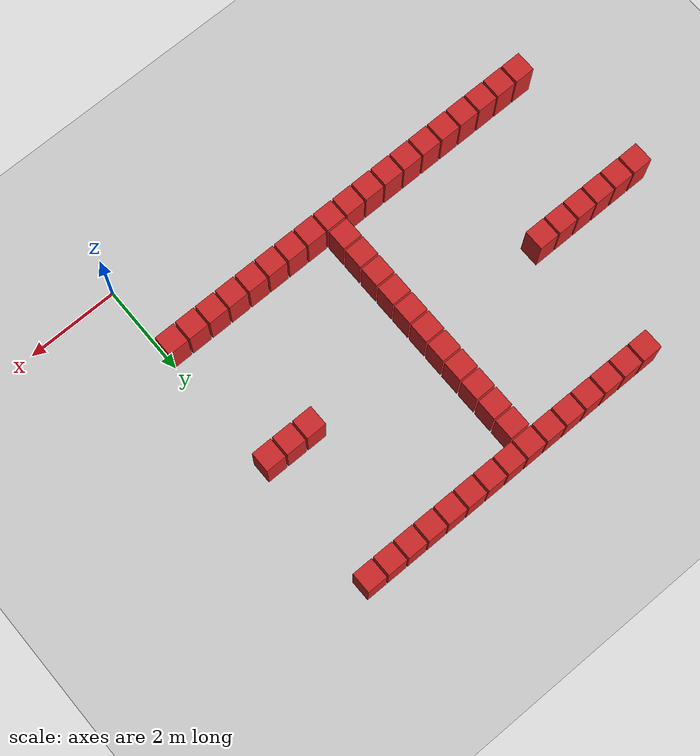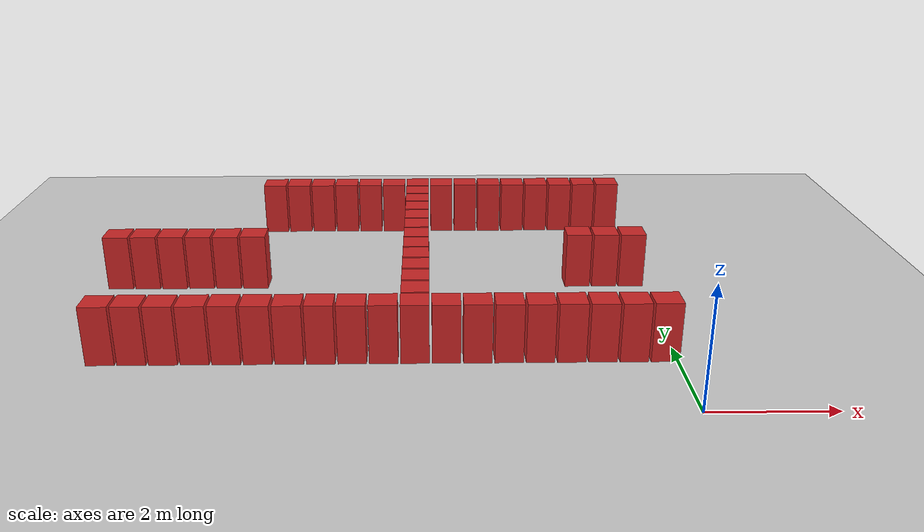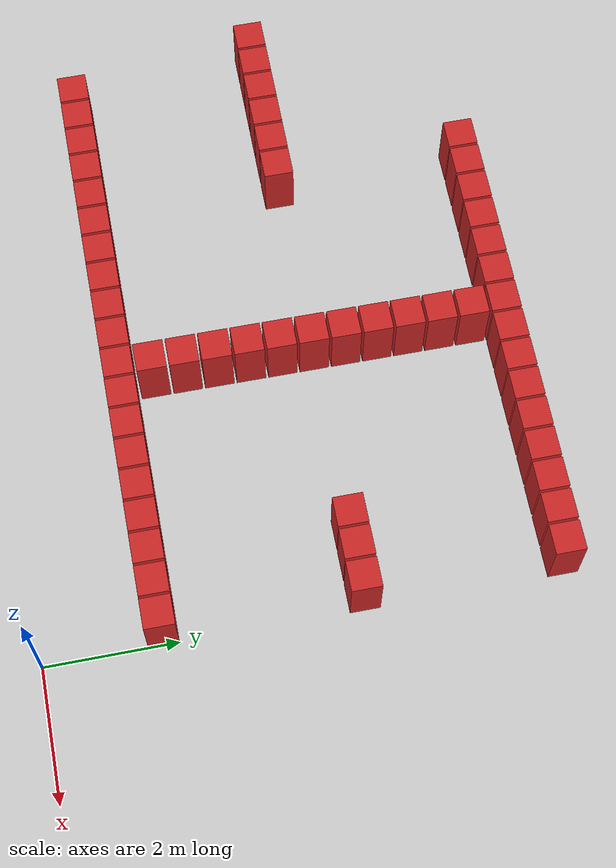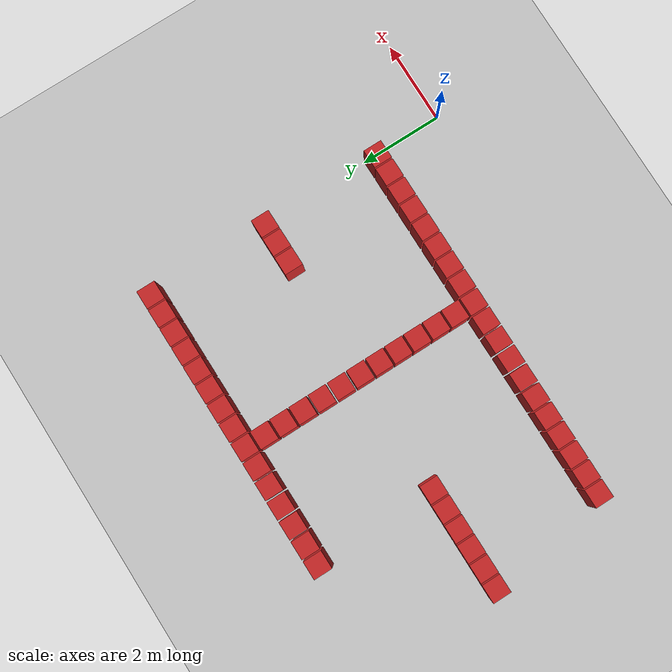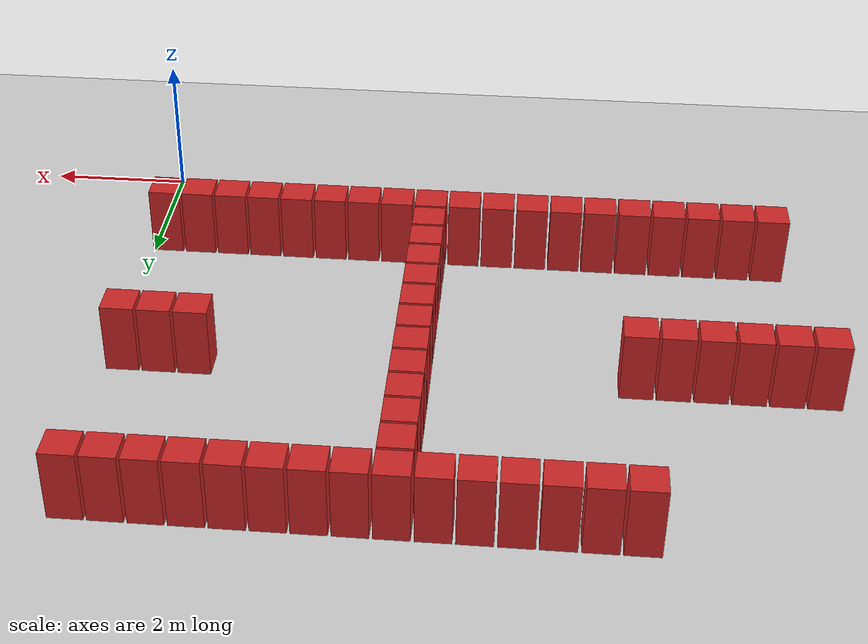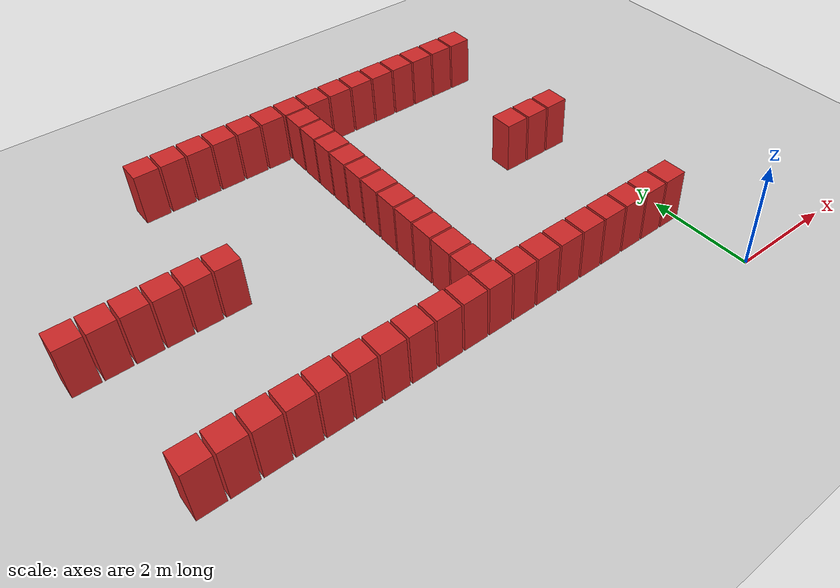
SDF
<sdf version="1.6">
 <world name="default">
  <model name="ground_plane">
   <static>1</static>
   <link name="link">
    <collision name="collision">
     <geometry><plane><normal>0 0 1</normal><size>100 100</size></plane></geometry>
     <surface><friction><ode><mu>100</mu><mu2>50</mu2></ode></friction></surface>
    </collision>
    <visual name="visual">
     <cast_shadows>0</cast_shadows>
     <geometry><plane><normal>0 0 1</normal><size>100 100</size></plane></geometry>
     <material>
      <script><uri>file://media/materials/scripts/gazebo.material</uri><name>Gazebo/Grey</name></script>
     </material>
    </visual>
   </link>
  </model>
  <model name="box_obstacle1">
   <static>0</static>
   <link name="link">
    <pose>0 0 0.1 0 -0 0</pose>
    <inertial>
     <mass>100</mass>
     <inertia>
      <ixx>0.166667</ixx>
      <ixy>0</ixy>
      <ixz>0</ixz>
      <iyy>0.166667</iyy>
      <iyz>0</iyz>
      <izz>0.166667</izz>
     </inertia>
    </inertial>
    <collision name="collision"><geometry><box><size>0.45 0.45 1</size></box></geometry></collision>
    <visual name="visual">
     <geometry><box><size>0.45 0.45 1</size></box></geometry>
     <material>
      <script><name>Gazebo/Red</name><uri>file://media/materials/scripts/gazebo.material</uri></script>
     </material>
    </visual>
   </link>
   <pose>-9.51051 4.69876 0.4 0 5e-06 0.002247</pose>
  </model>
  <model name="box_obstacle2">
   <static>0</static>
   <link name="link">
    <pose>0 0 0.1 0 -0 0</pose>
    <inertial>
     <mass>100</mass>
     <inertia>
      <ixx>0.166667</ixx>
      <ixy>0</ixy>
      <ixz>0</ixz>
      <iyy>0.166667</iyy>
      <iyz>0</iyz>
      <izz>0.166667</izz>
     </inertia>
    </inertial>
    <collision name="collision"><geometry><box><size>0.45 0.45 1</size></box></geometry></collision>
    <visual name="visual">
     <geometry><box><size>0.45 0.45 1</size></box></geometry>
     <material>
      <script><name>Gazebo/Red</name><uri>file://media/materials/scripts/gazebo.material</uri></script>
     </material>
    </visual>
   </link>
   <pose>-9.02051 1.75876 0.4 0 5e-06 0.002247</pose>
  </model>
  <model name="box_obstacle3">
   <static>0</static>
   <link name="link">
    <pose>0 0 0.1 0 -0 0</pose>
    <inertial>
     <mass>100</mass>
     <inertia>
      <ixx>0.166667</ixx>
      <ixy>0</ixy>
      <ixz>0</ixz>
      <iyy>0.166667</iyy>
      <iyz>0</iyz>
      <izz>0.166667</izz>
     </inertia>
    </inertial>
    <collision name="collision"><geometry><box><size>0.45 0.45 1</size></box></geometry></collision>
    <visual name="visual">
     <geometry><box><size>0.45 0.45 1</size></box></geometry>
     <material>
      <script><name>Gazebo/Red</name><uri>file://media/materials/scripts/gazebo.material</uri></script>
     </material>
    </visual>
   </link>
   <pose>-9.02051 4.69876 0.4 0 5e-06 0.002247</pose>
  </model>
  <model name="box_obstacle4">
   <static>0</static>
   <link name="link">
    <pose>0 0 0.1 0 -0 0</pose>
    <inertial>
     <mass>100</mass>
     <inertia>
      <ixx>0.166667</ixx>
      <ixy>0</ixy>
      <ixz>0</ixz>
      <iyy>0.166667</iyy>
      <iyz>0</iyz>
      <izz>0.166667</izz>
     </inertia>
    </inertial>
    <collision name="collision"><geometry><box><size>0.45 0.45 1</size></box></geometry></collision>
    <visual name="visual">
     <geometry><box><size>0.45 0.45 1</size></box></geometry>
     <material>
      <script><name>Gazebo/Red</name><uri>file://media/materials/scripts/gazebo.material</uri></script>
     </material>
    </visual>
   </link>
   <pose>-8.53051 1.75876 0.4 0 5e-06 0.002247</pose>
  </model>
  <model name="box_obstacle5">
   <static>0</static>
   <link name="link">
    <pose>0 0 0.1 0 -0 0</pose>
    <inertial>
     <mass>100</mass>
     <inertia>
      <ixx>0.166667</ixx>
      <ixy>0</ixy>
      <ixz>0</ixz>
      <iyy>0.166667</iyy>
      <iyz>0</iyz>
      <izz>0.166667</izz>
     </inertia>
    </inertial>
    <collision name="collision"><geometry><box><size>0.45 0.45 1</size></box></geometry></collision>
    <visual name="visual">
     <geometry><box><size>0.45 0.45 1</size></box></geometry>
     <material>
      <script><name>Gazebo/Red</name><uri>file://media/materials/scripts/gazebo.material</uri></script>
     </material>
    </visual>
   </link>
   <pose>-8.53051 4.69876 0.4 0 5e-06 0.002247</pose>
  </model>
  <model name="box_obstacle6">
   <static>0</static>
   <link name="link">
    <pose>0 0 0.1 0 -0 0</pose>
    <inertial>
     <mass>100</mass>
     <inertia>
      <ixx>0.166667</ixx>
      <ixy>0</ixy>
      <ixz>0</ixz>
      <iyy>0.166667</iyy>
      <iyz>0</iyz>
      <izz>0.166667</izz>
     </inertia>
    </inertial>
    <collision name="collision"><geometry><box><size>0.45 0.45 1</size></box></geometry></collision>
    <visual name="visual">
     <geometry><box><size>0.45 0.45 1</size></box></geometry>
     <material>
      <script><name>Gazebo/Red</name><uri>file://media/materials/scripts/gazebo.material</uri></script>
     </material>
    </visual>
   </link>
   <pose>-8.04051 1.75876 0.4 0 5e-06 0.002247</pose>
  </model>
  <model name="box_obstacle7">
   <static>0</static>
   <link name="link">
    <pose>0 0 0.1 0 -0 0</pose>
    <inertial>
     <mass>100</mass>
     <inertia>
      <ixx>0.166667</ixx>
      <ixy>0</ixy>
      <ixz>0</ixz>
      <iyy>0.166667</iyy>
      <iyz>0</iyz>
      <izz>0.166667</izz>
     </inertia>
    </inertial>
    <collision name="collision"><geometry><box><size>0.45 0.45 1</size></box></geometry></collision>
    <visual name="visual">
     <geometry><box><size>0.45 0.45 1</size></box></geometry>
     <material>
      <script><name>Gazebo/Red</name><uri>file://media/materials/scripts/gazebo.material</uri></script>
     </material>
    </visual>
   </link>
   <pose>-8.04051 4.69876 0.4 0 5e-06 0.002247</pose>
  </model>
  <model name="box_obstacle8">
   <static>0</static>
   <link name="link">
    <pose>0 0 0.1 0 -0 0</pose>
    <inertial>
     <mass>100</mass>
     <inertia>
      <ixx>0.166667</ixx>
      <ixy>0</ixy>
      <ixz>0</ixz>
      <iyy>0.166667</iyy>
      <iyz>0</iyz>
      <izz>0.166667</izz>
     </inertia>
    </inertial>
    <collision name="collision"><geometry><box><size>0.45 0.45 1</size></box></geometry></collision>
    <visual name="visual">
     <geometry><box><size>0.45 0.45 1</size></box></geometry>
     <material>
      <script><name>Gazebo/Red</name><uri>file://media/materials/scripts/gazebo.material</uri></script>
     </material>
    </visual>
   </link>
   <pose>-7.55051 1.75876 0.4 0 5e-06 0.002247</pose>
  </model>
  <model name="box_obstacle9">
   <static>0</static>
   <link name="link">
    <pose>0 0 0.1 0 -0 0</pose>
    <inertial>
     <mass>100</mass>
     <inertia>
      <ixx>0.166667</ixx>
      <ixy>0</ixy>
      <ixz>0</ixz>
      <iyy>0.166667</iyy>
      <iyz>0</iyz>
      <izz>0.166667</izz>
     </inertia>
    </inertial>
    <collision name="collision"><geometry><box><size>0.45 0.45 1</size></box></geometry></collision>
    <visual name="visual">
     <geometry><box><size>0.45 0.45 1</size></box></geometry>
     <material>
      <script><name>Gazebo/Red</name><uri>file://media/materials/scripts/gazebo.material</uri></script>
     </material>
    </visual>
   </link>
   <pose>-7.55051 4.69876 0.4 0 5e-06 0.002247</pose>
  </model>
  <model name="box_obstacle18">
   <static>0</static>
   <link name="link">
    <pose>0 0 0.1 0 -0 0</pose>
    <inertial>
     <mass>100</mass>
     <inertia>
      <ixx>0.166667</ixx>
      <ixy>0</ixy>
      <ixz>0</ixz>
      <iyy>0.166667</iyy>
      <iyz>0</iyz>
      <izz>0.166667</izz>
     </inertia>
    </inertial>
    <collision name="collision"><geometry><box><size>0.45 0.45 1</size></box></geometry></collision>
    <visual name="visual">
     <geometry><box><size>0.45 0.45 1</size></box></geometry>
     <material>
      <script><name>Gazebo/Red</name><uri>file://media/materials/scripts/gazebo.material</uri></script>
     </material>
    </visual>
   </link>
   <pose>-7.06051 1.75876 0.4 0 5e-06 0.002247</pose>
  </model>
  <model name="box_obstacle19">
   <static>0</static>
   <link name="link">
    <pose>0 0 0.1 0 -0 0</pose>
    <inertial>
     <mass>100</mass>
     <inertia>
      <ixx>0.166667</ixx>
      <ixy>0</ixy>
      <ixz>0</ixz>
      <iyy>0.166667</iyy>
      <iyz>0</iyz>
      <izz>0.166667</izz>
     </inertia>
    </inertial>
    <collision name="collision"><geometry><box><size>0.45 0.45 1</size></box></geometry></collision>
    <visual name="visual">
     <geometry><box><size>0.45 0.45 1</size></box></geometry>
     <material>
      <script><name>Gazebo/Red</name><uri>file://media/materials/scripts/gazebo.material</uri></script>
     </material>
    </visual>
   </link>
   <pose>-7.06051 4.69876 0.4 0 5e-06 0.002247</pose>
  </model>
  <model name="box_obstacle20">
   <static>0</static>
   <link name="link">
    <pose>0 0 0.1 0 -0 0</pose>
    <inertial>
     <mass>100</mass>
     <inertia>
      <ixx>0.166667</ixx>
      <ixy>0</ixy>
      <ixz>0</ixz>
      <iyy>0.166667</iyy>
      <iyz>0</iyz>
      <izz>0.166667</izz>
     </inertia>
    </inertial>
    <collision name="collision"><geometry><box><size>0.45 0.45 1</size></box></geometry></collision>
    <visual name="visual">
     <geometry><box><size>0.45 0.45 1</size></box></geometry>
     <material>
      <script><name>Gazebo/Red</name><uri>file://media/materials/scripts/gazebo.material</uri></script>
     </material>
    </visual>
   </link>
   <pose>-7.06051 7.63876 0.4 0 5e-06 0.002247</pose>
  </model>
  <model name="box_obstacle23">
   <static>0</static>
   <link name="link">
    <pose>0 0 0.1 0 -0 0</pose>
    <inertial>
     <mass>100</mass>
     <inertia>
      <ixx>0.166667</ixx>
      <ixy>0</ixy>
      <ixz>0</ixz>
      <iyy>0.166667</iyy>
      <iyz>0</iyz>
      <izz>0.166667</izz>
     </inertia>
    </inertial>
    <collision name="collision"><geometry><box><size>0.45 0.45 1</size></box></geometry></collision>
    <visual name="visual">
     <geometry><box><size>0.45 0.45 1</size></box></geometry>
     <material>
      <script><name>Gazebo/Red</name><uri>file://media/materials/scripts/gazebo.material</uri></script>
     </material>
    </visual>
   </link>
   <pose>-6.57051 1.75876 0.4 0 5e-06 0.002247</pose>
  </model>
  <model name="box_obstacle24">
   <static>0</static>
   <link name="link">
    <pose>0 0 0.1 0 -0 0</pose>
    <inertial>
     <mass>100</mass>
     <inertia>
      <ixx>0.166667</ixx>
      <ixy>0</ixy>
      <ixz>0</ixz>
      <iyy>0.166667</iyy>
      <iyz>0</iyz>
      <izz>0.166667</izz>
     </inertia>
    </inertial>
    <collision name="collision"><geometry><box><size>0.45 0.45 1</size></box></geometry></collision>
    <visual name="visual">
     <geometry><box><size>0.45 0.45 1</size></box></geometry>
     <material>
      <script><name>Gazebo/Red</name><uri>file://media/materials/scripts/gazebo.material</uri></script>
     </material>
    </visual>
   </link>
   <pose>-6.57051 7.63876 0.4 0 5e-06 0.002247</pose>
  </model>
  <model name="box_obstacle27">
   <static>0</static>
   <link name="link">
    <pose>0 0 0.1 0 -0 0</pose>
    <inertial>
     <mass>100</mass>
     <inertia>
      <ixx>0.166667</ixx>
      <ixy>0</ixy>
      <ixz>0</ixz>
      <iyy>0.166667</iyy>
      <iyz>0</iyz>
      <izz>0.166667</izz>
     </inertia>
    </inertial>
    <collision name="collision"><geometry><box><size>0.45 0.45 1</size></box></geometry></collision>
    <visual name="visual">
     <geometry><box><size>0.45 0.45 1</size></box></geometry>
     <material>
      <script><name>Gazebo/Red</name><uri>file://media/materials/scripts/gazebo.material</uri></script>
     </material>
    </visual>
   </link>
   <pose>-6.08051 1.75876 0.4 0 5e-06 0.002247</pose>
  </model>
  <model name="box_obstacle28">
   <static>0</static>
   <link name="link">
    <pose>0 0 0.1 0 -0 0</pose>
    <inertial>
     <mass>100</mass>
     <inertia>
      <ixx>0.166667</ixx>
      <ixy>0</ixy>
      <ixz>0</ixz>
      <iyy>0.166667</iyy>
      <iyz>0</iyz>
      <izz>0.166667</izz>
     </inertia>
    </inertial>
    <collision name="collision"><geometry><box><size>0.45 0.45 1</size></box></geometry></collision>
    <visual name="visual">
     <geometry><box><size>0.45 0.45 1</size></box></geometry>
     <material>
      <script><name>Gazebo/Red</name><uri>file://media/materials/scripts/gazebo.material</uri></script>
     </material>
    </visual>
   </link>
   <pose>-6.08051 7.63876 0.4 0 5e-06 0.002247</pose>
  </model>
  <model name="box_obstacle31">
   <static>0</static>
   <link name="link">
    <pose>0 0 0.1 0 -0 0</pose>
    <inertial>
     <mass>100</mass>
     <inertia>
      <ixx>0.166667</ixx>
      <ixy>0</ixy>
      <ixz>0</ixz>
      <iyy>0.166667</iyy>
      <iyz>0</iyz>
      <izz>0.166667</izz>
     </inertia>
    </inertial>
    <collision name="collision"><geometry><box><size>0.45 0.45 1</size></box></geometry></collision>
    <visual name="visual">
     <geometry><box><size>0.45 0.45 1</size></box></geometry>
     <material>
      <script><name>Gazebo/Red</name><uri>file://media/materials/scripts/gazebo.material</uri></script>
     </material>
    </visual>
   </link>
   <pose>-5.59051 1.75876 0.4 0 5e-06 0.002247</pose>
  </model>
  <model name="box_obstacle32">
   <static>0</static>
   <link name="link">
    <pose>0 0 0.1 0 -0 0</pose>
    <inertial>
     <mass>100</mass>
     <inertia>
      <ixx>0.166667</ixx>
      <ixy>0</ixy>
      <ixz>0</ixz>
      <iyy>0.166667</iyy>
      <iyz>0</iyz>
      <izz>0.166667</izz>
     </inertia>
    </inertial>
    <collision name="collision"><geometry><box><size>0.45 0.45 1</size></box></geometry></collision>
    <visual name="visual">
     <geometry><box><size>0.45 0.45 1</size></box></geometry>
     <material>
      <script><name>Gazebo/Red</name><uri>file://media/materials/scripts/gazebo.material</uri></script>
     </material>
    </visual>
   </link>
   <pose>-5.59051 7.63876 0.4 0 5e-06 0.002247</pose>
  </model>
  <model name="box_obstacle35">
   <static>0</static>
   <link name="link">
    <pose>0 0 0.1 0 -0 0</pose>
    <inertial>
     <mass>100</mass>
     <inertia>
      <ixx>0.166667</ixx>
      <ixy>0</ixy>
      <ixz>0</ixz>
      <iyy>0.166667</iyy>
      <iyz>0</iyz>
      <izz>0.166667</izz>
     </inertia>
    </inertial>
    <collision name="collision"><geometry><box><size>0.45 0.45 1</size></box></geometry></collision>
    <visual name="visual">
     <geometry><box><size>0.45 0.45 1</size></box></geometry>
     <material>
      <script><name>Gazebo/Red</name><uri>file://media/materials/scripts/gazebo.material</uri></script>
     </material>
    </visual>
   </link>
   <pose>-5.10051 1.75876 0.4 0 5e-06 0.002247</pose>
  </model>
  <model name="box_obstacle36">
   <static>0</static>
   <link name="link">
    <pose>0 0 0.1 0 -0 0</pose>
    <inertial>
     <mass>100</mass>
     <inertia>
      <ixx>0.166667</ixx>
      <ixy>0</ixy>
      <ixz>0</ixz>
      <iyy>0.166667</iyy>
      <iyz>0</iyz>
      <izz>0.166667</izz>
     </inertia>
    </inertial>
    <collision name="collision"><geometry><box><size>0.45 0.45 1</size></box></geometry></collision>
    <visual name="visual">
     <geometry><box><size>0.45 0.45 1</size></box></geometry>
     <material>
      <script><name>Gazebo/Red</name><uri>file://media/materials/scripts/gazebo.material</uri></script>
     </material>
    </visual>
   </link>
   <pose>-5.10051 7.63876 0.4 0 5e-06 0.002247</pose>
  </model>
  <model name="box_obstacle39">
   <static>0</static>
   <link name="link">
    <pose>0 0 0.1 0 -0 0</pose>
    <inertial>
     <mass>100</mass>
     <inertia>
      <ixx>0.166667</ixx>
      <ixy>0</ixy>
      <ixz>0</ixz>
      <iyy>0.166667</iyy>
      <iyz>0</iyz>
      <izz>0.166667</izz>
     </inertia>
    </inertial>
    <collision name="collision"><geometry><box><size>0.45 0.45 1</size></box></geometry></collision>
    <visual name="visual">
     <geometry><box><size>0.45 0.45 1</size></box></geometry>
     <material>
      <script><name>Gazebo/Red</name><uri>file://media/materials/scripts/gazebo.material</uri></script>
     </material>
    </visual>
   </link>
   <pose>-4.61051 1.75876 0.4 0 5e-06 0.002247</pose>
  </model>
  <model name="box_obstacle40">
   <static>0</static>
   <link name="link">
    <pose>0 0 0.1 0 -0 0</pose>
    <inertial>
     <mass>100</mass>
     <inertia>
      <ixx>0.166667</ixx>
      <ixy>0</ixy>
      <ixz>0</ixz>
      <iyy>0.166667</iyy>
      <iyz>0</iyz>
      <izz>0.166667</izz>
     </inertia>
    </inertial>
    <collision name="collision"><geometry><box><size>0.45 0.45 1</size></box></geometry></collision>
    <visual name="visual">
     <geometry><box><size>0.45 0.45 1</size></box></geometry>
     <material>
      <script><name>Gazebo/Red</name><uri>file://media/materials/scripts/gazebo.material</uri></script>
     </material>
    </visual>
   </link>
   <pose>-4.61051 7.63876 0.4 0 5e-06 0.002247</pose>
  </model>
  <model name="box_obstacle49">
   <static>0</static>
   <link name="link">
    <pose>0 0 0.1 0 -0 0</pose>
    <inertial>
     <mass>100</mass>
     <inertia>
      <ixx>0.166667</ixx>
      <ixy>0</ixy>
      <ixz>0</ixz>
      <iyy>0.166667</iyy>
      <iyz>0</iyz>
      <izz>0.166667</izz>
     </inertia>
    </inertial>
    <collision name="collision"><geometry><box><size>0.45 0.45 1</size></box></geometry></collision>
    <visual name="visual">
     <geometry><box><size>0.45 0.45 1</size></box></geometry>
     <material>
      <script><name>Gazebo/Red</name><uri>file://media/materials/scripts/gazebo.material</uri></script>
     </material>
    </visual>
   </link>
   <pose>-4.12051 1.75876 0.4 0 5e-06 0.002247</pose>
  </model>
  <model name="box_obstacle50">
   <static>0</static>
   <link name="link">
    <pose>0 0 0.1 0 -0 0</pose>
    <inertial>
     <mass>100</mass>
     <inertia>
      <ixx>0.166667</ixx>
      <ixy>0</ixy>
      <ixz>0</ixz>
      <iyy>0.166667</iyy>
      <iyz>0</iyz>
      <izz>0.166667</izz>
     </inertia>
    </inertial>
    <collision name="collision"><geometry><box><size>0.45 0.45 1</size></box></geometry></collision>
    <visual name="visual">
     <geometry><box><size>0.45 0.45 1</size></box></geometry>
     <material>
      <script><name>Gazebo/Red</name><uri>file://media/materials/scripts/gazebo.material</uri></script>
     </material>
    </visual>
   </link>
   <pose>-4.12051 2.24876 0.4 0 5e-06 0.002247</pose>
  </model>
  <model name="box_obstacle51">
   <static>0</static>
   <link name="link">
    <pose>0 0 0.1 0 -0 0</pose>
    <inertial>
     <mass>100</mass>
     <inertia>
      <ixx>0.166667</ixx>
      <ixy>0</ixy>
      <ixz>0</ixz>
      <iyy>0.166667</iyy>
      <iyz>0</iyz>
      <izz>0.166667</izz>
     </inertia>
    </inertial>
    <collision name="collision"><geometry><box><size>0.45 0.45 1</size></box></geometry></collision>
    <visual name="visual">
     <geometry><box><size>0.45 0.45 1</size></box></geometry>
     <material>
      <script><name>Gazebo/Red</name><uri>file://media/materials/scripts/gazebo.material</uri></script>
     </material>
    </visual>
   </link>
   <pose>-4.12051 2.73876 0.4 0 5e-06 0.002247</pose>
  </model>
  <model name="box_obstacle52">
   <static>0</static>
   <link name="link">
    <pose>0 0 0.1 0 -0 0</pose>
    <inertial>
     <mass>100</mass>
     <inertia>
      <ixx>0.166667</ixx>
      <ixy>0</ixy>
      <ixz>0</ixz>
      <iyy>0.166667</iyy>
      <iyz>0</iyz>
      <izz>0.166667</izz>
     </inertia>
    </inertial>
    <collision name="collision"><geometry><box><size>0.45 0.45 1</size></box></geometry></collision>
    <visual name="visual">
     <geometry><box><size>0.45 0.45 1</size></box></geometry>
     <material>
      <script><name>Gazebo/Red</name><uri>file://media/materials/scripts/gazebo.material</uri></script>
     </material>
    </visual>
   </link>
   <pose>-4.12051 3.22876 0.4 0 5e-06 0.002247</pose>
  </model>
  <model name="box_obstacle53">
   <static>0</static>
   <link name="link">
    <pose>0 0 0.1 0 -0 0</pose>
    <inertial>
     <mass>100</mass>
     <inertia>
      <ixx>0.166667</ixx>
      <ixy>0</ixy>
      <ixz>0</ixz>
      <iyy>0.166667</iyy>
      <iyz>0</iyz>
      <izz>0.166667</izz>
     </inertia>
    </inertial>
    <collision name="collision"><geometry><box><size>0.45 0.45 1</size></box></geometry></collision>
    <visual name="visual">
     <geometry><box><size>0.45 0.45 1</size></box></geometry>
     <material>
      <script><name>Gazebo/Red</name><uri>file://media/materials/scripts/gazebo.material</uri></script>
     </material>
    </visual>
   </link>
   <pose>-4.12051 3.71876 0.4 0 5e-06 0.002247</pose>
  </model>
  <model name="box_obstacle54">
   <static>0</static>
   <link name="link">
    <pose>0 0 0.1 0 -0 0</pose>
    <inertial>
     <mass>100</mass>
     <inertia>
      <ixx>0.166667</ixx>
      <ixy>0</ixy>
      <ixz>0</ixz>
      <iyy>0.166667</iyy>
      <iyz>0</iyz>
      <izz>0.166667</izz>
     </inertia>
    </inertial>
    <collision name="collision"><geometry><box><size>0.45 0.45 1</size></box></geometry></collision>
    <visual name="visual">
     <geometry><box><size>0.45 0.45 1</size></box></geometry>
     <material>
      <script><name>Gazebo/Red</name><uri>file://media/materials/scripts/gazebo.material</uri></script>
     </material>
    </visual>
   </link>
   <pose>-4.12051 4.20876 0.4 0 5e-06 0.002247</pose>
  </model>
  <model name="box_obstacle55">
   <static>0</static>
   <link name="link">
    <pose>0 0 0.1 0 -0 0</pose>
    <inertial>
     <mass>100</mass>
     <inertia>
      <ixx>0.166667</ixx>
      <ixy>0</ixy>
      <ixz>0</ixz>
      <iyy>0.166667</iyy>
      <iyz>0</iyz>
      <izz>0.166667</izz>
     </inertia>
    </inertial>
    <collision name="collision"><geometry><box><size>0.45 0.45 1</size></box></geometry></collision>
    <visual name="visual">
     <geometry><box><size>0.45 0.45 1</size></box></geometry>
     <material>
      <script><name>Gazebo/Red</name><uri>file://media/materials/scripts/gazebo.material</uri></script>
     </material>
    </visual>
   </link>
   <pose>-4.12051 4.69876 0.4 0 5e-06 0.002247</pose>
  </model>
  <model name="box_obstacle56">
   <static>0</static>
   <link name="link">
    <pose>0 0 0.1 0 -0 0</pose>
    <inertial>
     <mass>100</mass>
     <inertia>
      <ixx>0.166667</ixx>
      <ixy>0</ixy>
      <ixz>0</ixz>
      <iyy>0.166667</iyy>
      <iyz>0</iyz>
      <izz>0.166667</izz>
     </inertia>
    </inertial>
    <collision name="collision"><geometry><box><size>0.45 0.45 1</size></box></geometry></collision>
    <visual name="visual">
     <geometry><box><size>0.45 0.45 1</size></box></geometry>
     <material>
      <script><name>Gazebo/Red</name><uri>file://media/materials/scripts/gazebo.material</uri></script>
     </material>
    </visual>
   </link>
   <pose>-4.12051 5.18876 0.4 0 5e-06 0.002247</pose>
  </model>
  <model name="box_obstacle57">
   <static>0</static>
   <link name="link">
    <pose>0 0 0.1 0 -0 0</pose>
    <inertial>
     <mass>100</mass>
     <inertia>
      <ixx>0.166667</ixx>
      <ixy>0</ixy>
      <ixz>0</ixz>
      <iyy>0.166667</iyy>
      <iyz>0</iyz>
      <izz>0.166667</izz>
     </inertia>
    </inertial>
    <collision name="collision"><geometry><box><size>0.45 0.45 1</size></box></geometry></collision>
    <visual name="visual">
     <geometry><box><size>0.45 0.45 1</size></box></geometry>
     <material>
      <script><name>Gazebo/Red</name><uri>file://media/materials/scripts/gazebo.material</uri></script>
     </material>
    </visual>
   </link>
   <pose>-4.12051 5.67876 0.4 0 5e-06 0.002247</pose>
  </model>
  <model name="box_obstacle58">
   <static>0</static>
   <link name="link">
    <pose>0 0 0.1 0 -0 0</pose>
    <inertial>
     <mass>100</mass>
     <inertia>
      <ixx>0.166667</ixx>
      <ixy>0</ixy>
      <ixz>0</ixz>
      <iyy>0.166667</iyy>
      <iyz>0</iyz>
      <izz>0.166667</izz>
     </inertia>
    </inertial>
    <collision name="collision"><geometry><box><size>0.45 0.45 1</size></box></geometry></collision>
    <visual name="visual">
     <geometry><box><size>0.45 0.45 1</size></box></geometry>
     <material>
      <script><name>Gazebo/Red</name><uri>file://media/materials/scripts/gazebo.material</uri></script>
     </material>
    </visual>
   </link>
   <pose>-4.12051 6.16876 0.4 0 5e-06 0.002247</pose>
  </model>
  <model name="box_obstacle59">
   <static>0</static>
   <link name="link">
    <pose>0 0 0.1 0 -0 0</pose>
    <inertial>
     <mass>100</mass>
     <inertia>
      <ixx>0.166667</ixx>
      <ixy>0</ixy>
      <ixz>0</ixz>
      <iyy>0.166667</iyy>
      <iyz>0</iyz>
      <izz>0.166667</izz>
     </inertia>
    </inertial>
    <collision name="collision"><geometry><box><size>0.45 0.45 1</size></box></geometry></collision>
    <visual name="visual">
     <geometry><box><size>0.45 0.45 1</size></box></geometry>
     <material>
      <script><name>Gazebo/Red</name><uri>file://media/materials/scripts/gazebo.material</uri></script>
     </material>
    </visual>
   </link>
   <pose>-4.12051 6.65876 0.4 0 5e-06 0.002247</pose>
  </model>
  <model name="box_obstacle60">
   <static>0</static>
   <link name="link">
    <pose>0 0 0.1 0 -0 0</pose>
    <inertial>
     <mass>100</mass>
     <inertia>
      <ixx>0.166667</ixx>
      <ixy>0</ixy>
      <ixz>0</ixz>
      <iyy>0.166667</iyy>
      <iyz>0</iyz>
      <izz>0.166667</izz>
     </inertia>
    </inertial>
    <collision name="collision"><geometry><box><size>0.45 0.45 1</size></box></geometry></collision>
    <visual name="visual">
     <geometry><box><size>0.45 0.45 1</size></box></geometry>
     <material>
      <script><name>Gazebo/Red</name><uri>file://media/materials/scripts/gazebo.material</uri></script>
     </material>
    </visual>
   </link>
   <pose>-4.12051 7.14876 0.4 0 5e-06 0.002247</pose>
  </model>
  <model name="box_obstacle61">
   <static>0</static>
   <link name="link">
    <pose>0 0 0.1 0 -0 0</pose>
    <inertial>
     <mass>100</mass>
     <inertia>
      <ixx>0.166667</ixx>
      <ixy>0</ixy>
      <ixz>0</ixz>
      <iyy>0.166667</iyy>
      <iyz>0</iyz>
      <izz>0.166667</izz>
     </inertia>
    </inertial>
    <collision name="collision"><geometry><box><size>0.45 0.45 1</size></box></geometry></collision>
    <visual name="visual">
     <geometry><box><size>0.45 0.45 1</size></box></geometry>
     <material>
      <script><name>Gazebo/Red</name><uri>file://media/materials/scripts/gazebo.material</uri></script>
     </material>
    </visual>
   </link>
   <pose>-4.12051 7.63876 0.4 0 5e-06 0.002247</pose>
  </model>
  <model name="box_obstacle64">
   <static>0</static>
   <link name="link">
    <pose>0 0 0.1 0 -0 0</pose>
    <inertial>
     <mass>100</mass>
     <inertia>
      <ixx>0.166667</ixx>
      <ixy>0</ixy>
      <ixz>0</ixz>
      <iyy>0.166667</iyy>
      <iyz>0</iyz>
      <izz>0.166667</izz>
     </inertia>
    </inertial>
    <collision name="collision"><geometry><box><size>0.45 0.45 1</size></box></geometry></collision>
    <visual name="visual">
     <geometry><box><size>0.45 0.45 1</size></box></geometry>
     <material>
      <script><name>Gazebo/Red</name><uri>file://media/materials/scripts/gazebo.material</uri></script>
     </material>
    </visual>
   </link>
   <pose>-3.63051 1.75876 0.4 0 5e-06 0.002247</pose>
  </model>
  <model name="box_obstacle65">
   <static>0</static>
   <link name="link">
    <pose>0 0 0.1 0 -0 0</pose>
    <inertial>
     <mass>100</mass>
     <inertia>
      <ixx>0.166667</ixx>
      <ixy>0</ixy>
      <ixz>0</ixz>
      <iyy>0.166667</iyy>
      <iyz>0</iyz>
      <izz>0.166667</izz>
     </inertia>
    </inertial>
    <collision name="collision"><geometry><box><size>0.45 0.45 1</size></box></geometry></collision>
    <visual name="visual">
     <geometry><box><size>0.45 0.45 1</size></box></geometry>
     <material>
      <script><name>Gazebo/Red</name><uri>file://media/materials/scripts/gazebo.material</uri></script>
     </material>
    </visual>
   </link>
   <pose>-3.63051 7.63876 0.4 0 5e-06 0.002247</pose>
  </model>
  <model name="box_obstacle68">
   <static>0</static>
   <link name="link">
    <pose>0 0 0.1 0 -0 0</pose>
    <inertial>
     <mass>100</mass>
     <inertia>
      <ixx>0.166667</ixx>
      <ixy>0</ixy>
      <ixz>0</ixz>
      <iyy>0.166667</iyy>
      <iyz>0</iyz>
      <izz>0.166667</izz>
     </inertia>
    </inertial>
    <collision name="collision"><geometry><box><size>0.45 0.45 1</size></box></geometry></collision>
    <visual name="visual">
     <geometry><box><size>0.45 0.45 1</size></box></geometry>
     <material>
      <script><name>Gazebo/Red</name><uri>file://media/materials/scripts/gazebo.material</uri></script>
     </material>
    </visual>
   </link>
   <pose>-3.14051 1.75876 0.4 0 5e-06 0.002247</pose>
  </model>
  <model name="box_obstacle69">
   <static>0</static>
   <link name="link">
    <pose>0 0 0.1 0 -0 0</pose>
    <inertial>
     <mass>100</mass>
     <inertia>
      <ixx>0.166667</ixx>
      <ixy>0</ixy>
      <ixz>0</ixz>
      <iyy>0.166667</iyy>
      <iyz>0</iyz>
      <izz>0.166667</izz>
     </inertia>
    </inertial>
    <collision name="collision"><geometry><box><size>0.45 0.45 1</size></box></geometry></collision>
    <visual name="visual">
     <geometry><box><size>0.45 0.45 1</size></box></geometry>
     <material>
      <script><name>Gazebo/Red</name><uri>file://media/materials/scripts/gazebo.material</uri></script>
     </material>
    </visual>
   </link>
   <pose>-3.14051 7.63876 0.4 0 5e-06 0.002247</pose>
  </model>
  <model name="box_obstacle72">
   <static>0</static>
   <link name="link">
    <pose>0 0 0.1 0 -0 0</pose>
    <inertial>
     <mass>100</mass>
     <inertia>
      <ixx>0.166667</ixx>
      <ixy>0</ixy>
      <ixz>0</ixz>
      <iyy>0.166667</iyy>
      <iyz>0</iyz>
      <izz>0.166667</izz>
     </inertia>
    </inertial>
    <collision name="collision"><geometry><box><size>0.45 0.45 1</size></box></geometry></collision>
    <visual name="visual">
     <geometry><box><size>0.45 0.45 1</size></box></geometry>
     <material>
      <script><name>Gazebo/Red</name><uri>file://media/materials/scripts/gazebo.material</uri></script>
     </material>
    </visual>
   </link>
   <pose>-2.65051 1.75876 0.4 0 5e-06 0.002247</pose>
  </model>
  <model name="box_obstacle73">
   <static>0</static>
   <link name="link">
    <pose>0 0 0.1 0 -0 0</pose>
    <inertial>
     <mass>100</mass>
     <inertia>
      <ixx>0.166667</ixx>
      <ixy>0</ixy>
      <ixz>0</ixz>
      <iyy>0.166667</iyy>
      <iyz>0</iyz>
      <izz>0.166667</izz>
     </inertia>
    </inertial>
    <collision name="collision"><geometry><box><size>0.45 0.45 1</size></box></geometry></collision>
    <visual name="visual">
     <geometry><box><size>0.45 0.45 1</size></box></geometry>
     <material>
      <script><name>Gazebo/Red</name><uri>file://media/materials/scripts/gazebo.material</uri></script>
     </material>
    </visual>
   </link>
   <pose>-2.65051 7.63876 0.4 0 5e-06 0.002247</pose>
  </model>
  <model name="box_obstacle76">
   <static>0</static>
   <link name="link">
    <pose>0 0 0.1 0 -0 0</pose>
    <inertial>
     <mass>100</mass>
     <inertia>
      <ixx>0.166667</ixx>
      <ixy>0</ixy>
      <ixz>0</ixz>
      <iyy>0.166667</iyy>
      <iyz>0</iyz>
      <izz>0.166667</izz>
     </inertia>
    </inertial>
    <collision name="collision"><geometry><box><size>0.45 0.45 1</size></box></geometry></collision>
    <visual name="visual">
     <geometry><box><size>0.45 0.45 1</size></box></geometry>
     <material>
      <script><name>Gazebo/Red</name><uri>file://media/materials/scripts/gazebo.material</uri></script>
     </material>
    </visual>
   </link>
   <pose>-2.16051 1.75876 0.4 0 5e-06 0.002247</pose>
  </model>
  <model name="box_obstacle77">
   <static>0</static>
   <link name="link">
    <pose>0 0 0.1 0 -0 0</pose>
    <inertial>
     <mass>100</mass>
     <inertia>
      <ixx>0.166667</ixx>
      <ixy>0</ixy>
      <ixz>0</ixz>
      <iyy>0.166667</iyy>
      <iyz>0</iyz>
      <izz>0.166667</izz>
     </inertia>
    </inertial>
    <collision name="collision"><geometry><box><size>0.45 0.45 1</size></box></geometry></collision>
    <visual name="visual">
     <geometry><box><size>0.45 0.45 1</size></box></geometry>
     <material>
      <script><name>Gazebo/Red</name><uri>file://media/materials/scripts/gazebo.material</uri></script>
     </material>
    </visual>
   </link>
   <pose>-2.16051 7.63876 0.4 0 5e-06 0.002247</pose>
  </model>
  <model name="box_obstacle80">
   <static>0</static>
   <link name="link">
    <pose>0 0 0.1 0 -0 0</pose>
    <inertial>
     <mass>100</mass>
     <inertia>
      <ixx>0.166667</ixx>
      <ixy>0</ixy>
      <ixz>0</ixz>
      <iyy>0.166667</iyy>
      <iyz>0</iyz>
      <izz>0.166667</izz>
     </inertia>
    </inertial>
    <collision name="collision"><geometry><box><size>0.45 0.45 1</size></box></geometry></collision>
    <visual name="visual">
     <geometry><box><size>0.45 0.45 1</size></box></geometry>
     <material>
      <script><name>Gazebo/Red</name><uri>file://media/materials/scripts/gazebo.material</uri></script>
     </material>
    </visual>
   </link>
   <pose>-1.67051 1.75876 0.4 0 5e-06 0.002247</pose>
  </model>
  <model name="box_obstacle81">
   <static>0</static>
   <link name="link">
    <pose>0 0 0.1 0 -0 0</pose>
    <inertial>
     <mass>100</mass>
     <inertia>
      <ixx>0.166667</ixx>
      <ixy>0</ixy>
      <ixz>0</ixz>
      <iyy>0.166667</iyy>
      <iyz>0</iyz>
      <izz>0.166667</izz>
     </inertia>
    </inertial>
    <collision name="collision"><geometry><box><size>0.45 0.45 1</size></box></geometry></collision>
    <visual name="visual">
     <geometry><box><size>0.45 0.45 1</size></box></geometry>
     <material>
      <script><name>Gazebo/Red</name><uri>file://media/materials/scripts/gazebo.material</uri></script>
     </material>
    </visual>
   </link>
   <pose>-1.67051 7.63876 0.4 0 5e-06 0.002247</pose>
  </model>
  <model name="box_obstacle90">
   <static>0</static>
   <link name="link">
    <pose>0 0 0.1 0 -0 0</pose>
    <inertial>
     <mass>100</mass>
     <inertia>
      <ixx>0.166667</ixx>
      <ixy>0</ixy>
      <ixz>0</ixz>
      <iyy>0.166667</iyy>
      <iyz>0</iyz>
      <izz>0.166667</izz>
     </inertia>
    </inertial>
    <collision name="collision"><geometry><box><size>0.45 0.45 1</size></box></geometry></collision>
    <visual name="visual">
     <geometry><box><size>0.45 0.45 1</size></box></geometry>
     <material>
      <script><name>Gazebo/Red</name><uri>file://media/materials/scripts/gazebo.material</uri></script>
     </material>
    </visual>
   </link>
   <pose>-1.18051 1.75876 0.4 0 5e-06 0.002247</pose>
  </model>
  <model name="box_obstacle91">
   <static>0</static>
   <link name="link">
    <pose>0 0 0.1 0 -0 0</pose>
    <inertial>
     <mass>100</mass>
     <inertia>
      <ixx>0.166667</ixx>
      <ixy>0</ixy>
      <ixz>0</ixz>
      <iyy>0.166667</iyy>
      <iyz>0</iyz>
      <izz>0.166667</izz>
     </inertia>
    </inertial>
    <collision name="collision"><geometry><box><size>0.45 0.45 1</size></box></geometry></collision>
    <visual name="visual">
     <geometry><box><size>0.45 0.45 1</size></box></geometry>
     <material>
      <script><name>Gazebo/Red</name><uri>file://media/materials/scripts/gazebo.material</uri></script>
     </material>
    </visual>
   </link>
   <pose>-1.18051 4.69876 0.4 0 5e-06 0.002247</pose>
  </model>
  <model name="box_obstacle92">
   <static>0</static>
   <link name="link">
    <pose>0 0 0.1 0 -0 0</pose>
    <inertial>
     <mass>100</mass>
     <inertia>
      <ixx>0.166667</ixx>
      <ixy>0</ixy>
      <ixz>0</ixz>
      <iyy>0.166667</iyy>
      <iyz>0</iyz>
      <izz>0.166667</izz>
     </inertia>
    </inertial>
    <collision name="collision"><geometry><box><size>0.45 0.45 1</size></box></geometry></collision>
    <visual name="visual">
     <geometry><box><size>0.45 0.45 1</size></box></geometry>
     <material>
      <script><name>Gazebo/Red</name><uri>file://media/materials/scripts/gazebo.material</uri></script>
     </material>
    </visual>
   </link>
   <pose>-1.18051 7.63876 0.4 0 5e-06 0.002247</pose>
  </model>
  <model name="box_obstacle95">
   <static>0</static>
   <link name="link">
    <pose>0 0 0.1 0 -0 0</pose>
    <inertial>
     <mass>100</mass>
     <inertia>
      <ixx>0.166667</ixx>
      <ixy>0</ixy>
      <ixz>0</ixz>
      <iyy>0.166667</iyy>
      <iyz>0</iyz>
      <izz>0.166667</izz>
     </inertia>
    </inertial>
    <collision name="collision"><geometry><box><size>0.45 0.45 1</size></box></geometry></collision>
    <visual name="visual">
     <geometry><box><size>0.45 0.45 1</size></box></geometry>
     <material>
      <script><name>Gazebo/Red</name><uri>file://media/materials/scripts/gazebo.material</uri></script>
     </material>
    </visual>
   </link>
   <pose>-0.690508 1.75876 0.4 0 5e-06 0.002247</pose>
  </model>
  <model name="box_obstacle96">
   <static>0</static>
   <link name="link">
    <pose>0 0 0.1 0 -0 0</pose>
    <inertial>
     <mass>100</mass>
     <inertia>
      <ixx>0.166667</ixx>
      <ixy>0</ixy>
      <ixz>0</ixz>
      <iyy>0.166667</iyy>
      <iyz>0</iyz>
      <izz>0.166667</izz>
     </inertia>
    </inertial>
    <collision name="collision"><geometry><box><size>0.45 0.45 1</size></box></geometry></collision>
    <visual name="visual">
     <geometry><box><size>0.45 0.45 1</size></box></geometry>
     <material>
      <script><name>Gazebo/Red</name><uri>file://media/materials/scripts/gazebo.material</uri></script>
     </material>
    </visual>
   </link>
   <pose>-0.690508 4.69876 0.4 0 5e-06 0.002247</pose>
  </model>
  <model name="box_obstacle97">
   <static>0</static>
   <link name="link">
    <pose>0 0 0.1 0 -0 0</pose>
    <inertial>
     <mass>100</mass>
     <inertia>
      <ixx>0.166667</ixx>
      <ixy>0</ixy>
      <ixz>0</ixz>
      <iyy>0.166667</iyy>
      <iyz>0</iyz>
      <izz>0.166667</izz>
     </inertia>
    </inertial>
    <collision name="collision"><geometry><box><size>0.45 0.45 1</size></box></geometry></collision>
    <visual name="visual">
     <geometry><box><size>0.45 0.45 1</size></box></geometry>
     <material>
      <script><name>Gazebo/Red</name><uri>file://media/materials/scripts/gazebo.material</uri></script>
     </material>
    </visual>
   </link>
   <pose>-0.690508 7.63876 0.4 0 5e-06 0.002247</pose>
  </model>
  <model name="box_obstacle100">
   <static>0</static>
   <link name="link">
    <pose>0 0 0.1 0 -0 0</pose>
    <inertial>
     <mass>100</mass>
     <inertia>
      <ixx>0.166667</ixx>
      <ixy>0</ixy>
      <ixz>0</ixz>
      <iyy>0.166667</iyy>
      <iyz>0</iyz>
      <izz>0.166667</izz>
     </inertia>
    </inertial>
    <collision name="collision"><geometry><box><size>0.45 0.45 1</size></box></geometry></collision>
    <visual name="visual">
     <geometry><box><size>0.45 0.45 1</size></box></geometry>
     <material>
      <script><name>Gazebo/Red</name><uri>file://media/materials/scripts/gazebo.material</uri></script>
     </material>
    </visual>
   </link>
   <pose>-0.200508 1.75876 0.4 0 5e-06 0.002247</pose>
  </model>
  <model name="box_obstacle101">
   <static>0</static>
   <link name="link">
    <pose>0 0 0.1 0 -0 0</pose>
    <inertial>
     <mass>100</mass>
     <inertia>
      <ixx>0.166667</ixx>
      <ixy>0</ixy>
      <ixz>0</ixz>
      <iyy>0.166667</iyy>
      <iyz>0</iyz>
      <izz>0.166667</izz>
     </inertia>
    </inertial>
    <collision name="collision"><geometry><box><size>0.45 0.45 1</size></box></geometry></collision>
    <visual name="visual">
     <geometry><box><size>0.45 0.45 1</size></box></geometry>
     <material>
      <script><name>Gazebo/Red</name><uri>file://media/materials/scripts/gazebo.material</uri></script>
     </material>
    </visual>
   </link>
   <pose>-0.200508 4.69876 0.4 0 5e-06 0.002247</pose>
  </model>
  <model name="box_obstacle102">
   <static>0</static>
   <link name="link">
    <pose>0 0 0.1 0 -0 0</pose>
    <inertial>
     <mass>100</mass>
     <inertia>
      <ixx>0.166667</ixx>
      <ixy>0</ixy>
      <ixz>0</ixz>
      <iyy>0.166667</iyy>
      <iyz>0</iyz>
      <izz>0.166667</izz>
     </inertia>
    </inertial>
    <collision name="collision"><geometry><box><size>0.45 0.45 1</size></box></geometry></collision>
    <visual name="visual">
     <geometry><box><size>0.45 0.45 1</size></box></geometry>
     <material>
      <script><name>Gazebo/Red</name><uri>file://media/materials/scripts/gazebo.material</uri></script>
     </material>
    </visual>
   </link>
   <pose>-0.200508 7.63876 0.4 0 5e-06 0.002247</pose>
  </model>
 </world>
</sdf>
